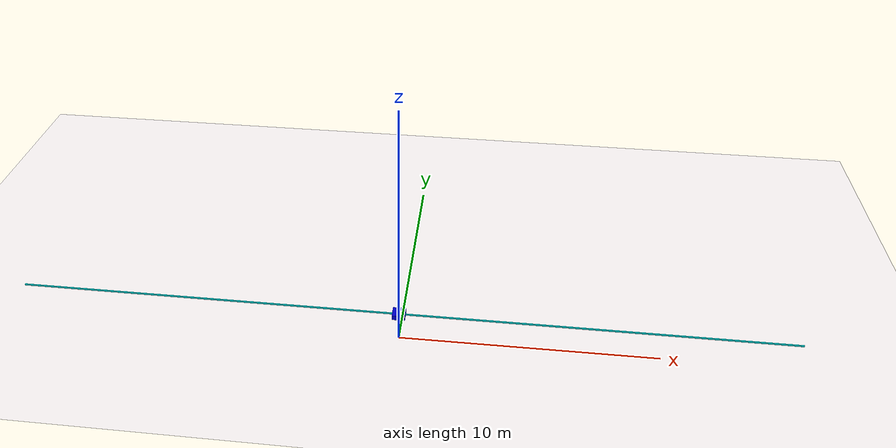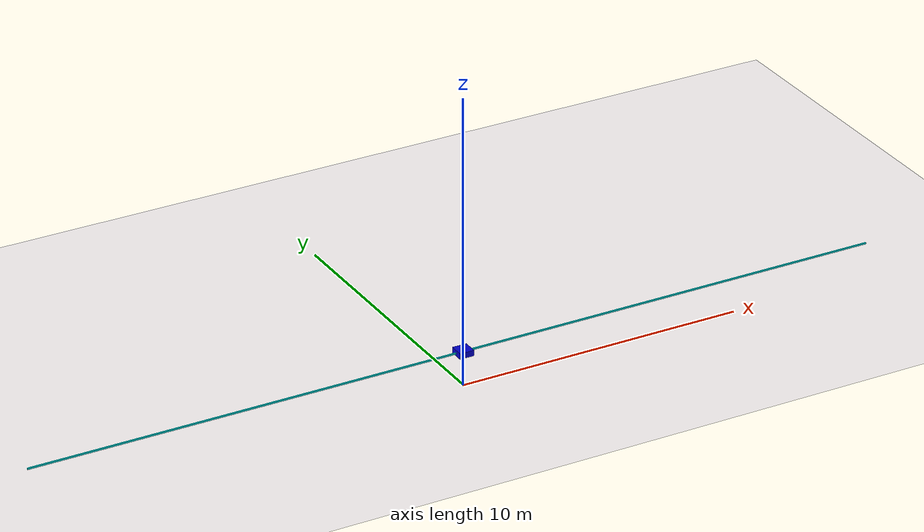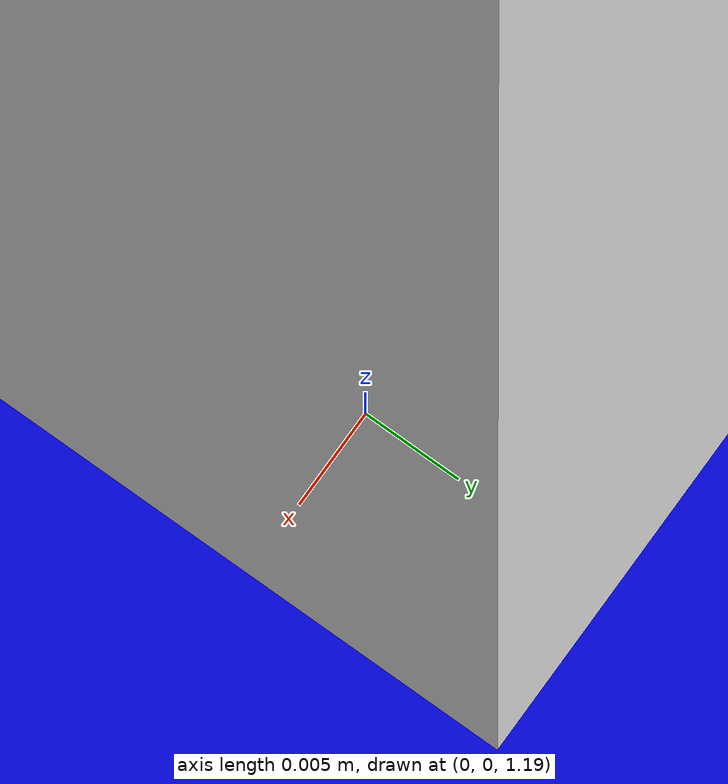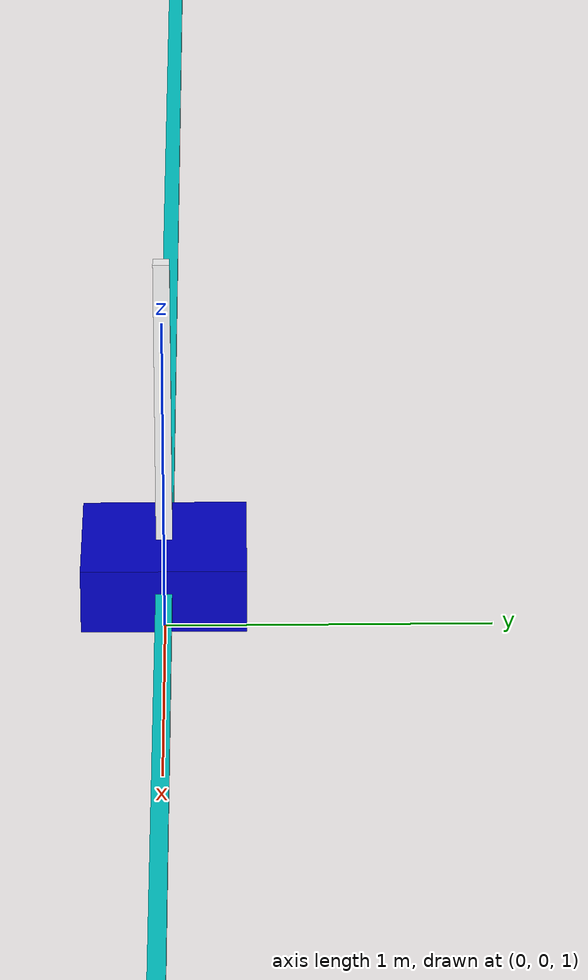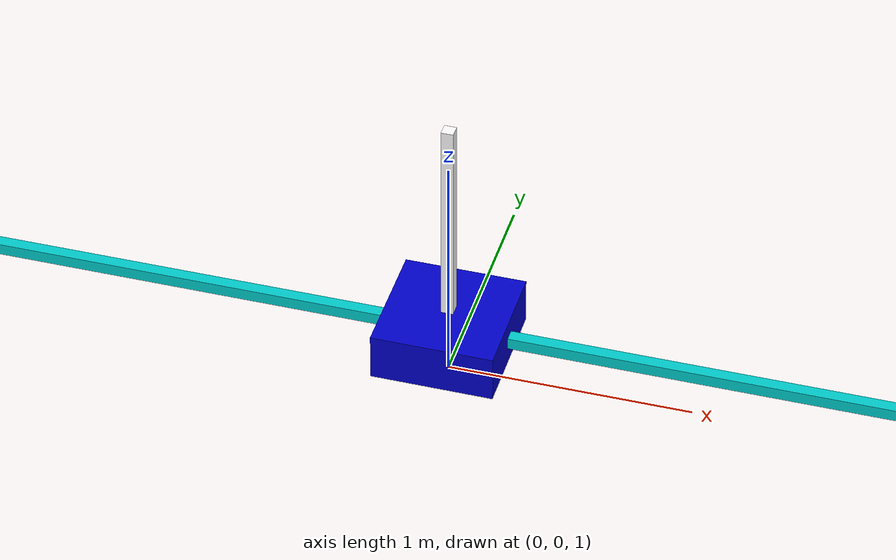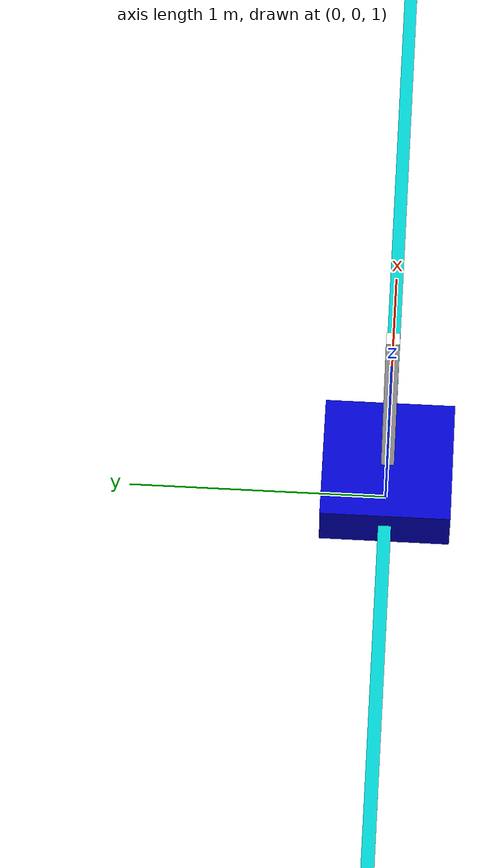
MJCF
<mujoco model="physics">
  <compiler angle="radian" meshdir="../meshes/"/>

  <option timestep='0.002' iterations='50' solver='Newton' gravity='0 0 -9.81' integrator = 'RK4'/>
  <size njmax="500" nconmax="100" />

  <size nuser_actuator='1' nuser_sensor='1' nuser_geom='1'/>

  <visual>
    <quality shadowsize='4096'/>
    <map znear='0.01'/>
  </visual>

  <default>
    <geom contype='0' conaffinity='0' condim='3' solref='0.01 0.7' rgba="1.0000 0.9804 0.9804 1"/>
  </default>

  <asset>
    <texture name='plane' type='2d' builtin='checker' rgb1='0.2745 0.5098 0.7059' rgb2='0.5294 0.8078 0.9804' width='512' height='512'/>
    <material name='plane' reflectance='0.0' texture='plane' texrepeat='1 1' texuniform='true'/>
  </asset>

  <worldbody>
    <geom name="floor" type="plane" conaffinity="2" size="100 100 .2" material="plane"/>
    <body name="slideBar" pos="0 0 1.2">
      <geom size="15 0.025 0.025" type="box" contype="2" conaffinity="4" group="1" density="0" rgba="0 0.8 0.8 1"/>
      <body name="cart">
        <inertial pos="0 0 0" mass="1" diaginertia="1 1 1"/>
        <joint name="slider_to_cart" pos="0 0 0" axis="1 0 0" type="slide" range="-15 15" actuatorfrcrange="-1000 1000" damping="0.0" frictionloss="0.0"/>
        <geom size="0.25 0.25 0.1" type="box" contype="2" conaffinity="4" group="1" density="0" rgba="0 0 0.8 1"/>
        <geom size="0.25 0.25 0.1" type="box" rgba="0 0 0.8 1"/>

        <site name='imu' size='0.01' pos='0.0 0 0.0' />

        <body name="pole">
          <inertial pos="0 0 0.5" mass="10" diaginertia="1 1 1"/>
          <joint name="cart_to_pole" pos="0 0 0" axis="0 1 0" type="hinge" actuatorfrcrange="-1000 1000" damping="0.0" frictionloss="0.0"/>
          <geom size="0.025 0.025 0.5" pos="0 0 0.5" type="box" contype="2" conaffinity="4" group="1" density="0" rgba="1 1 1 1"/>
          <geom size="0.025 0.025 0.5" pos="0 0 0.5" type="box" rgba="1 1 1 1"/>
        </body>
      </body>
    </body>
  </worldbody>

  <actuator>
    <motor name="slider_to_cart" joint="slider_to_cart" gear="1" ctrllimited="true" ctrlrange="-1000 1000"/>
    <motor name="cart_to_pole" joint="cart_to_pole" gear="1" ctrllimited="true" ctrlrange="-1000 1000" />
  </actuator>

  <sensor>
    <actuatorpos name='slider_to_cart_p' actuator='slider_to_cart' user='13' />
    <actuatorpos name='cart_to_pole_p' actuator='cart_to_pole' user='13' />

    <actuatorvel name='slider_to_cart_v' actuator='slider_to_cart' user='13' />
    <actuatorvel name='cart_to_pole_v' actuator='cart_to_pole' user='13' />

    <actuatorfrc name='slider_to_cart_f' actuator='slider_to_cart' user='13' />
    <actuatorfrc name='cart_to_pole_f' actuator='cart_to_pole' user='13' />

    <framequat name='orientation' objtype='site' noise='0.001' objname='imu' />
    <framepos name='position' objtype='site' noise='0.001' objname='imu' />
    <gyro name='angular-velocity' site='imu' noise='0.005' cutoff='34.9' />
    <velocimeter name='linear-velocity' site='imu' noise='0.001' cutoff='30' />
    <accelerometer name='linear-acceleration' site='imu' noise='0.005' cutoff='157' />
    <magnetometer name='magnetometer' site='imu' />

  </sensor>
</mujoco>
